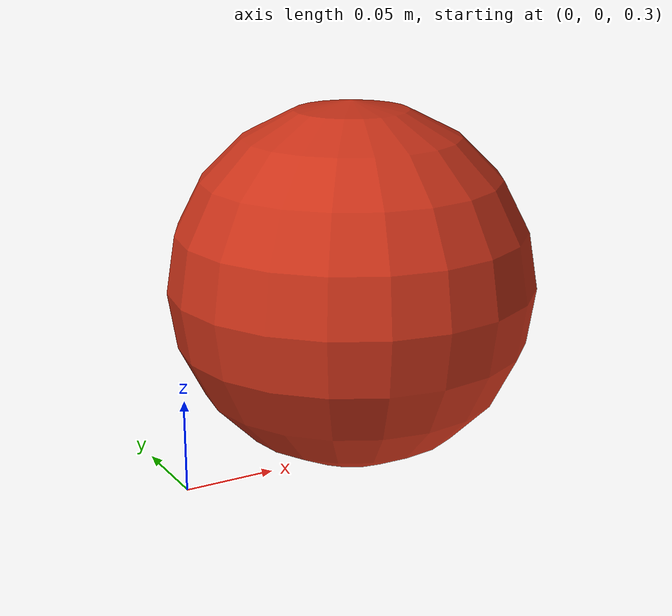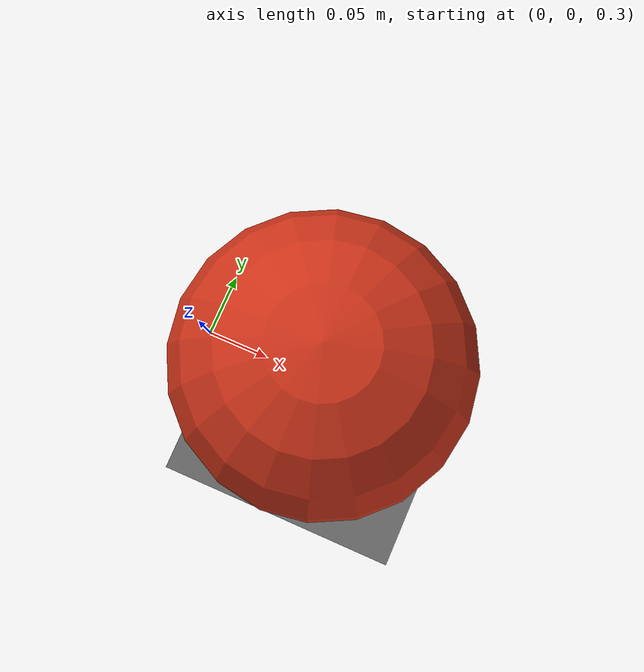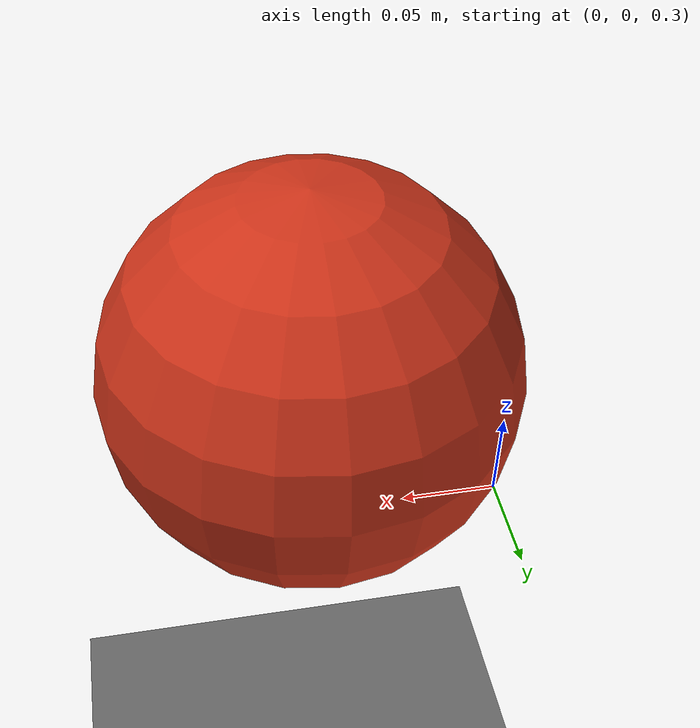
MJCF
<mujoco model="native_observation_contracts">
  <compiler angle="radian"/>
  <option timestep="0.002" gravity="0 0 -9.81"/>
  <statistic extent="2"/>
  <visual>
    <global offwidth="64" offheight="48"/>
    <map znear="0.01" zfar="5"/>
  </visual>
  <worldbody>
    <light pos="1 -1 2"/>
    <geom name="floor" type="plane" size="2 2 0.1" rgba="0.4 0.4 0.4 1"/>
    <body name="camera_mount" pos="0 0 1.4">
      <camera name="top" quat="1 0 0 0" fovy="50" resolution="64 48"/>
    </body>
    <body name="payload" pos="0.1 0 0.4">
      <freejoint/>
      <geom name="ball" type="sphere" size="0.1" mass="0.2" rgba="0.8 0.2 0.1 1"/>
      <site name="imu" size="0.008"/>
    </body>
  </worldbody>
  <sensor>
    <gyro name="angular_velocity" site="imu"/>
    <accelerometer name="specific_force" site="imu"/>
    <framepos name="imu_in_camera" objtype="site" objname="imu"
              reftype="camera" refname="top"/>
    <camprojection name="imu_pixel" site="imu" camera="top"/>
    <rangefinder name="rays" camera="top" data="dist point depth"/>
  </sensor>
</mujoco>
